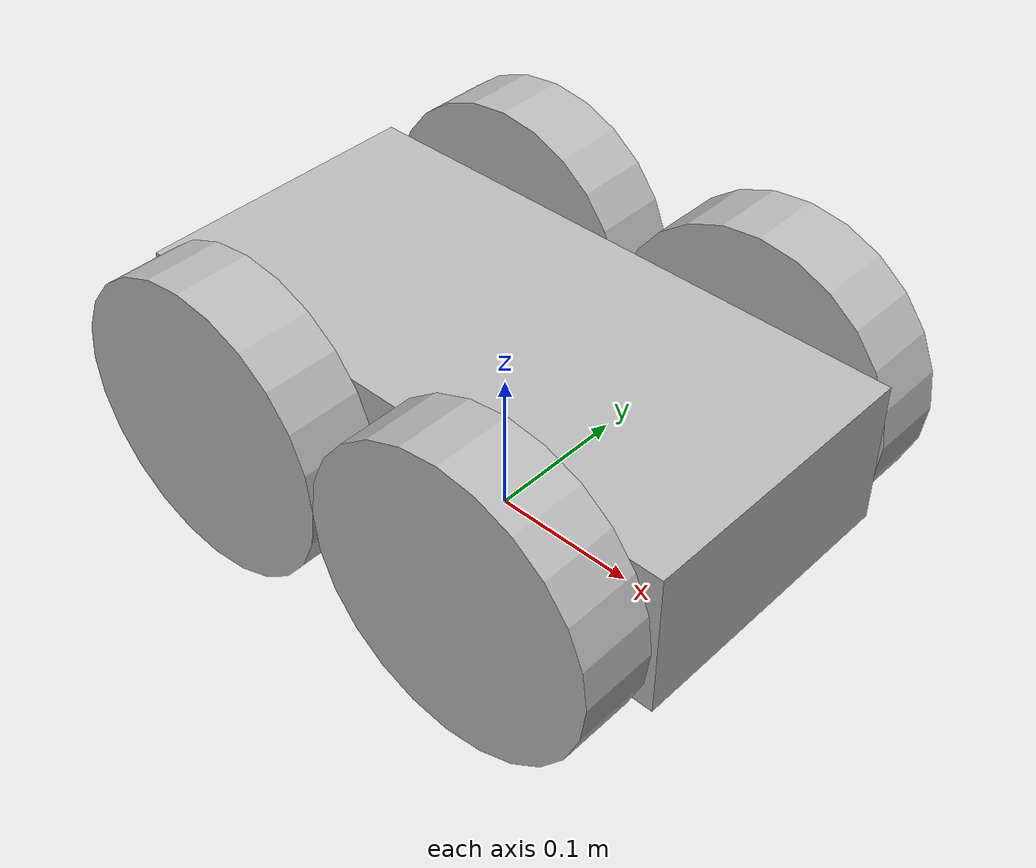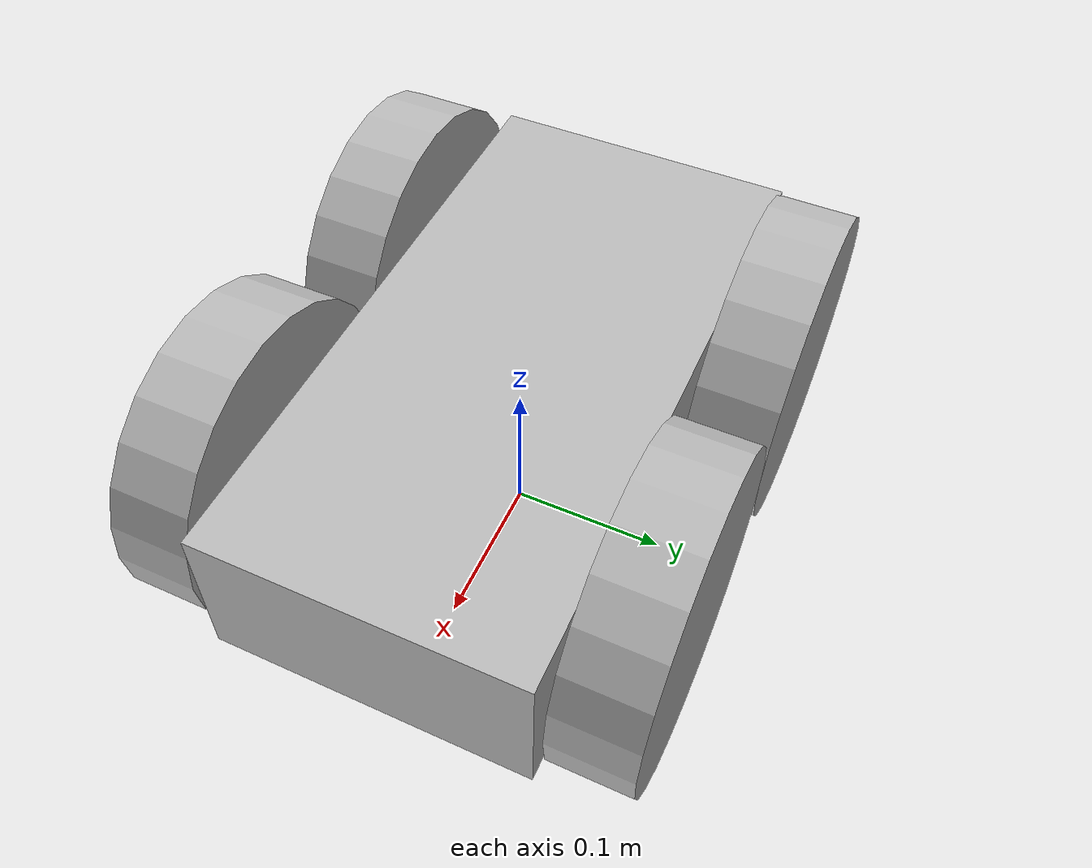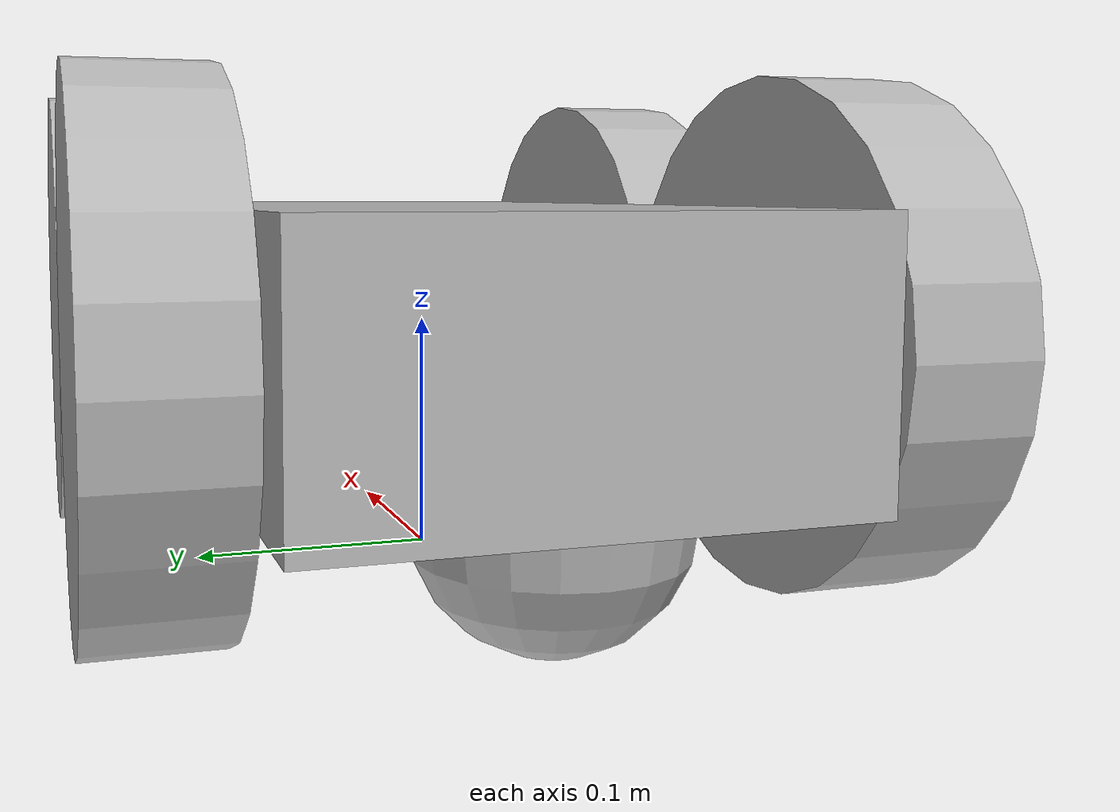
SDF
<?xml version="1.0"?>
<sdf version="1.5">
       <model name="MiniTestingRobot">

        <static>false</static>
        <link name='chassis'>
                 <pose>0 0 .1 0 0 0</pose>
                 <collision name='collision'>
                   <geometry>
                     <box>
                       <size>.4 .2 .1</size>
                     </box>
                   </geometry>
                 </collision>

                 <visual name='visual'>
                   <geometry>
                     <box>
                       <size>.4 .2 .1</size>
                     </box>
                   </geometry>
                 </visual>

                 <collision name='caster_collision'>
                   <pose>-0.15 0 -0.05 0 0 0</pose>
                   <geometry>
                     <sphere>
                     <radius>.05</radius>
                   </sphere>
                 </geometry>

                 <surface>
                   <friction>
                     <ode>
                       <mu>0</mu>
                       <mu2>0</mu2>
                       <slip1>1.0</slip1>
                       <slip2>1.0</slip2>
                     </ode>
                   </friction>
                 </surface>
               </collision>

               <visual name='caster_visual'>
                 <pose>-0.15 0 -0.05 0 0 0</pose>
                 <geometry>
                   <sphere>
                     <radius>.05</radius>
                   </sphere>
                 </geometry>
               </visual>
             </link>

             <link name="leftFront">
               <pose>0.1 0.13 0.1 0 1.5707 1.5707</pose>
               <collision name="collision">
                 <geometry>
                   <cylinder>
                     <radius>.1</radius>
                     <length>.05</length>
                   </cylinder>
                 </geometry>
               </collision>
               <visual name="visual">
                 <geometry>
                   <cylinder>
                     <radius>.1</radius>
                     <length>.05</length>
                   </cylinder>
                 </geometry>
               </visual>
             </link>

             <link name="rightFront">

               <pose>0.1 -0.13 0.1 0 1.5707 1.5707</pose>
               <collision name="collision">
                 <geometry>
                   <cylinder>
                     <radius>.1</radius>
                     <length>.05</length>
                   </cylinder>
                 </geometry>
               </collision>
               <visual name="visual">
                 <geometry>
                   <cylinder>
                     <radius>.1</radius>
                     <length>.05</length>
                   </cylinder>
                 </geometry>
               </visual>
             </link>

             <link name="leftBack">
               <pose>-0.1 0.13 0.1 0 1.5707 1.5707</pose>
               <collision name="collision">
                 <geometry>
                   <cylinder>
                     <radius>.1</radius>
                     <length>.05</length>
                   </cylinder>
                 </geometry>
               </collision>
               <visual name="visual">
                 <geometry>
                   <cylinder>
                     <radius>.1</radius>
                     <length>.05</length>
                   </cylinder>
                 </geometry>
               </visual>
             </link>

             <link name="rightBack">

               <pose>-0.1 -0.13 0.1 0 1.5707 1.5707</pose>
               <collision name="collision">
                 <geometry>
                   <cylinder>
                     <radius>.1</radius>
                     <length>.05</length>
                   </cylinder>
                 </geometry>
               </collision>
               <visual name="visual">
                 <geometry>
                   <cylinder>
                     <radius>.1</radius>
                     <length>.05</length>
                   </cylinder>
                 </geometry>
               </visual>
             </link>

 <joint type="revolute" name="left_front_hinge">
        <pose>0 0 -0.03 0 0 0</pose>
        <child>leftFront</child>
        <parent>chassis</parent>
        <axis>
          <xyz>0 1 0</xyz>
        </axis>
      </joint>

      <joint type="revolute" name="right_front_hinge">
        <pose>0 0 0.03 0 0 0</pose>
        <child>rightFront</child>
        <parent>chassis</parent>
        <axis>
          <xyz>0 1 0</xyz>
        </axis>
      </joint>

      <joint type="revolute" name="left_back_hinge">
             <pose>0 0 -0.03 0 0 0</pose>
             <child>leftBack</child>
             <parent>chassis</parent>
             <axis>
               <xyz>0 1 0</xyz>
             </axis>
           </joint>

           <joint type="revolute" name="right_back_hinge">
             <pose>0 0 0.03 0 0 0</pose>
             <child>rightBack</child>
             <parent>chassis</parent>
             <axis>
               <xyz>0 1 0</xyz>
             </axis>
           </joint>

             <plugin name="gazebo_ros_control" filename="libgazebo_ros_control.so" />
              <plugin name="skid_steer_drive_controller" filename="libgazebo_ros_skid_steer_drive.so">
                <alwaysOn>1</alwaysOn>
                <updateRate>100.0</updateRate>
                <robotNamespace></robotNamespace>
                <leftFrontJoint>left_front_joint</leftFrontJoint>
                <rightFrontJoint>right_front_joint</rightFrontJoint>
                <leftRearJoint>left_back_hinge</leftRearJoint>
                <rightRearJoint>right_back_hinge</rightRearJoint>
                <wheelSeparation>.2</wheelSeparation>
                <wheelDiameter>.1</wheelDiameter>
                <torque>100</torque>
                <broadcastTF>1</broadcastTF>
                <odometryFrame>map</odometryFrame>
                <commandTopic>cmd_vel</commandTopic>
                <odometryTopic>odom</odometryTopic>
                <robotBaseFrame>base_footprint</robotBaseFrame><!--base_footprint-->
                <covariance_x>0.0001</covariance_x>
                <covariance_y>0.0001</covariance_y>
                <covariance_z>0.0001</covariance_z>
                <covariance_yaw>0.0001</covariance_yaw>
              </plugin>

    </model>
</sdf>
